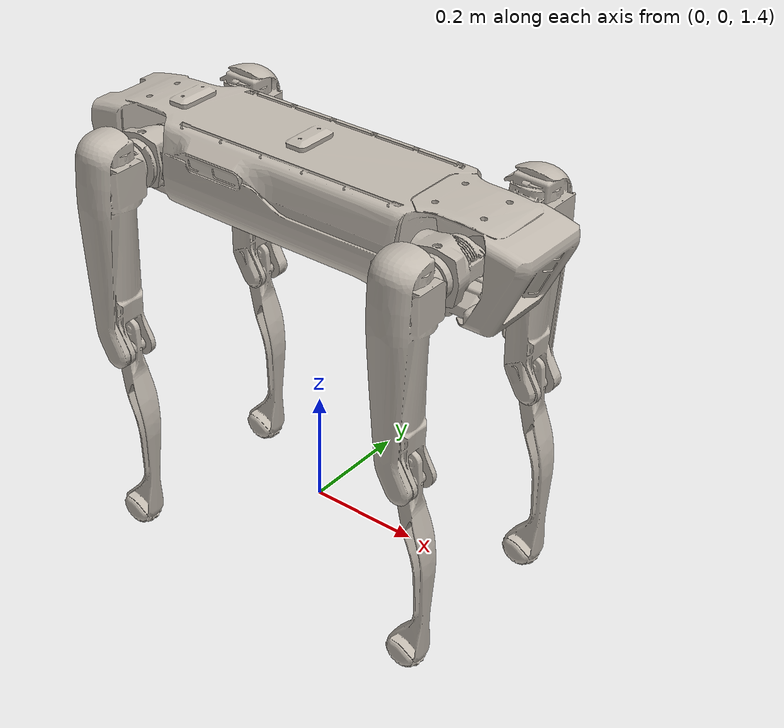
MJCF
<mujoco model="spot scene">
  <include file="spot.xml"/>

  <visual>
    <headlight diffuse="0.6 0.6 0.6" ambient="0.3 0.3 0.3" specular="0 0 0"/>
    <rgba haze="0.15 0.25 0.35 1"/>
    <global azimuth="120" elevation="-20"/>
  </visual>

  <statistic center="0 0 .3" extent="1.2"/>

  <asset>
    <texture type="skybox" builtin="gradient" rgb1="0.3 0.5 0.7" rgb2="0 0 0" width="512" height="3072"/>
    <texture type="2d" name="groundplane" builtin="checker" mark="edge" rgb1="0.2 0.3 0.4" rgb2="0.1 0.2 0.3"
      markrgb="0.8 0.8 0.8" width="300" height="300"/>
    <material name="groundplane" texture="groundplane" texuniform="true" texrepeat="5 5" reflectance="0.2"/>
  </asset>

  <worldbody>
    <light pos="0 0 1.5" dir="0 0 -1" directional="true"/>
    <geom name="floor" size="0 0 0.05" type="plane" material="groundplane"/>
  </worldbody>
</mujoco>

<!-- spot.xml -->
<mujoco model="spot">
    <compiler angle="degree" autolimits="true" balanceinertia="true"/>
    <option cone="elliptic" impratio="100"/>

    <default>
        <material specular="0" shininess="0.25"/>
        <default class="spot">
        <joint damping="1" frictionloss="0.1"/>

        <default class="visual">
            <geom type="mesh" contype="0" conaffinity="0" group="2"/>
            <default class="visual_zflip">
            <geom quat="0 0 0 1"/>
            </default>
        </default>
        <default class="collision">
            <geom group="3" type="cylinder"/>
            <default class="foot">
            <geom type="sphere" size="0.03" pos="0 0 0.02325" priority="1" solimp="0.015 1 0.031" condim="6"
                friction="0.8 0.02 0.01"/>
            </default>
        </default>

        <default class="affine">
            <position kp="100" ctrlrange="-6.28 6.28" forcerange="-80 80"/>
        </default>
        </default>
    </default>

    <asset>
        <material name="base" texture="base"/>

        <texture type="2d" name="base" file="spot_mat.png"/>

        <mesh file="body.obj"/>

        <mesh file="front_left_hip.obj"/>
        <mesh file="front_right_hip.obj"/>
        <mesh file="rear_left_hip.obj"/>
        <mesh file="rear_right_hip.obj"/>

        <mesh file="front_left_upper_leg.obj" />
        <mesh file="front_right_upper_leg.obj" />
        <mesh file="rear_left_upper_leg.obj" />
        <mesh file="rear_right_upper_leg.obj" />

        <mesh file="front_left_lower_leg.obj" />
        <mesh file="front_right_lower_leg.obj" />
        <mesh file="rear_left_lower_leg.obj" />
        <mesh file="rear_right_lower_leg.obj" />
    </asset>

    <worldbody>
        <light name="spotlight" mode="targetbodycom" target="base" pos="0 -1 2" cutoff="30"/>
        <body name="base" pos="0 0 2" quat="1 1 0 0" childclass="spot">
            <freejoint/>
            <inertial mass="16.25" pos="0 0 0" diaginertia="0.085 1.045 1.042"/>
            <geom mesh="body" material="base" class="visual"/>

            <body name="FL_hip" pos="0.29785 0 -0.05500">
                <inertial mass="1.5" pos="0 0 0" diaginertia="0.0605 0.0 0.0"/>
                <joint name="front_left_hip_x" type="hinge" pos="0 0 0" axis="1 0 0" range="-45 45" damping="0.1"/>
                <geom  material="base" mesh="front_left_hip" class="visual"/>

                <body name="FL_upper_leg" pos="0.0 0.0 -0.110945">
                    <inertial mass="1.5" pos="0 0 0" diaginertia="0.0 0.5 0.0"/>
                    <joint name="front_left_upper_leg_x" type="hinge" pos="0 0 0" axis="0 0 1" range="-90 90" damping="0.1"/>
                    <geom  material="base" mesh="front_left_upper_leg" class="visual"/>

                    <body name="FL_lower_leg" pos="0.025 -0.3205 0">
                        <inertial mass="1.5" pos="0 0 0" diaginertia="0.0 0.045 0.0"/>
                        <joint name="front_left_lower_leg_x" type="hinge" pos="0 0 0" axis="0 0 1" range="-90 90" damping="0.1"/>
                        <geom  material="base" mesh="front_left_lower_leg" class="visual"/>
                    </body>
                </body>
            </body>

            <body name="FR_HIP" pos="0.29785 0 +0.05500">
                <inertial mass="1.5" pos="0 0 0" diaginertia="0.0605 0.0 0.0"/>
                <joint name="front_right_hip_x" type="hinge" pos="0 0 0" axis="1 0 0" range="-45 45" damping="0.1"/>
                <geom  material="base" mesh="front_right_hip" class="visual"/>

                <body name="FR_upper_leg" pos="0.0 0.0 +0.110945">
                    <inertial mass="1.5" pos="0 0 0" diaginertia="0.0 0.5 0.0"/>
                    <joint name="front_right_upper_leg_x" type="hinge" pos="0 0 0" axis="0 0 1" range="-90 90" damping="0.1"/>
                    <geom  material="base" mesh="front_right_upper_leg" class="visual"/>

                    <body name="FR_lower_leg" pos="0.025 -0.3205 0">
                        <inertial mass="1.5" pos="0 0 0" diaginertia="0.0 0.045 0.0"/>
                        <joint name="front_right_lower_leg_x" type="hinge" pos="0 0 0" axis="0 0 1" range="-90 90" damping="0.1"/>
                        <geom  material="base" mesh="front_right_lower_leg" class="visual"/>
                    </body>
                </body>
            </body>

            <body name="RL_HIP" pos="-0.29785 0 -0.05500">
                <inertial mass="1.5" pos="0 0 0" diaginertia="0.0605 0.0 0.0"/>
                <joint name="rear_left_hip_x" type="hinge" pos="0 0 0" axis="1 0 0" range="-45 45" damping="0.1"/>
                <geom  material="base" mesh="rear_left_hip" class="visual"/>

                <body name="RL_upper_leg" pos="0.0 0.0 -0.110945">
                    <inertial mass="1.5" pos="0 0 0" diaginertia="0.0 0.5 0.0"/>
                    <joint name="rear_left_upper_leg_x" type="hinge" pos="0 0 0" axis="0 0 1" range="-90 90" damping="0.1"/>
                    <geom  material="base" mesh="rear_left_upper_leg" class="visual"/>

                    <body name="RL_lower_leg" pos="0.025 -0.3205 0">
                        <inertial mass="1.5" pos="0 0 0" diaginertia="0.0 0.045 0.0"/>
                        <joint name="rear_left_lower_leg_x" type="hinge" pos="0 0 0" axis="0 0 1" range="-90 90" damping="0.1"/>
                        <geom  material="base" mesh="rear_left_lower_leg" class="visual"/>
                    </body>
                </body>
            </body>

            <body name="RR_HIP" pos="-0.29785 0 +0.05500">
                <inertial mass="1.5" pos="0 0 0" diaginertia="0.0605 0.0 0.0"/>
                <joint name="rear_right_hip_x" type="hinge" pos="0 0 0" axis="1 0 0" range="-45 45" damping="0.1"/>
                <geom  material="base" mesh="rear_right_hip" class="visual"/>

                <body name="RR_upper_leg" pos="0.0 0.0 +0.110945">
                    <inertial mass="1.5" pos="0 0 0" diaginertia="0.0 0.5 0.0"/>
                    <joint name="rear_right_upper_leg_x" type="hinge" pos="0 0 0" axis="0 0 1" range="-90 90" damping="0.1"/>
                    <geom  material="base" mesh="rear_right_upper_leg" class="visual"/>

                    <body name="RR_lower_leg" pos="0.025 -0.3205 0">
                        <inertial mass="1.5" pos="0 0 0" diaginertia="0.0 0.045 0.0"/>
                        <joint name="rear_right_lower_leg_x" type="hinge" pos="0 0 0" axis="0 0 1" range="-90 90" damping="0.1"/>
                        <geom  material="base" mesh="rear_right_lower_leg" class="visual"/>
                    </body>
                </body>
            </body>

        </body>
    </worldbody>

</mujoco>
